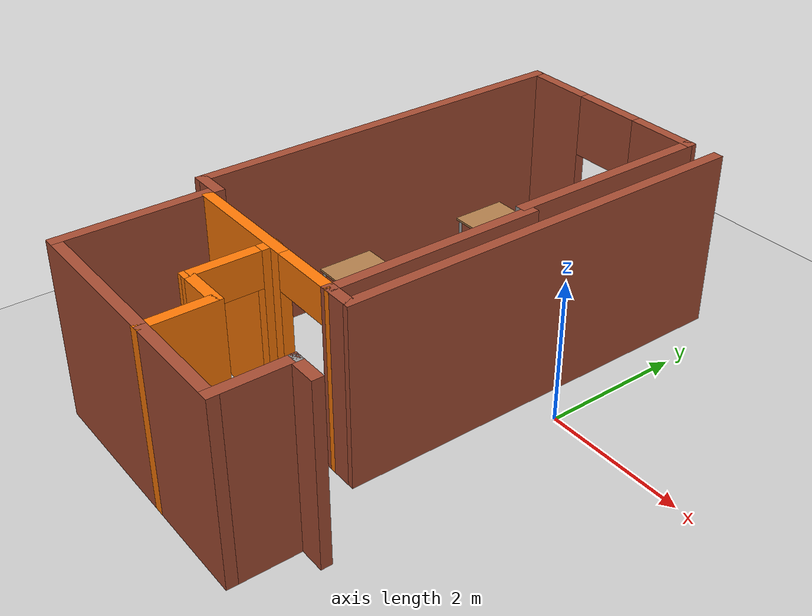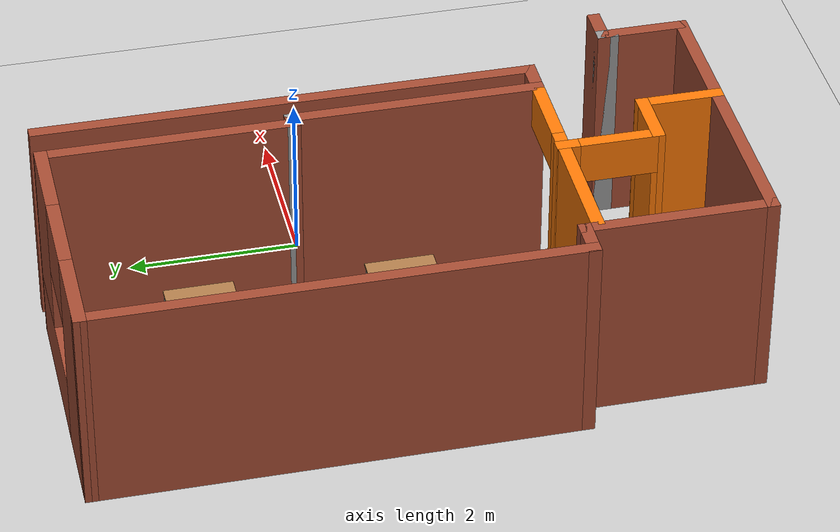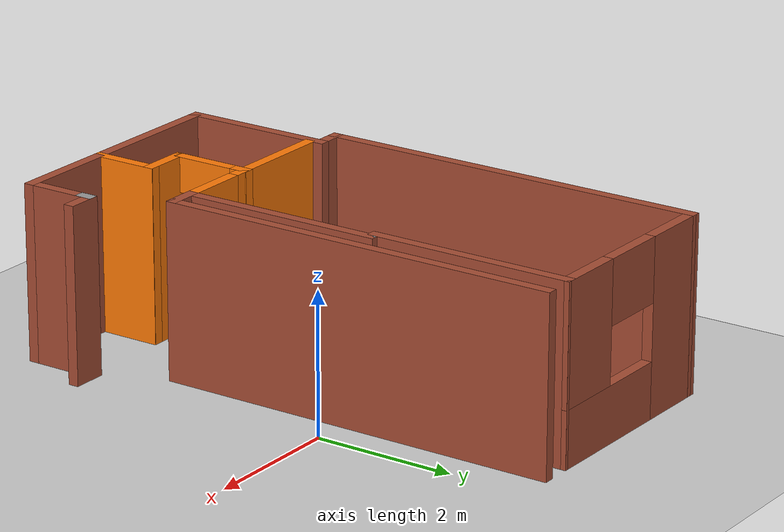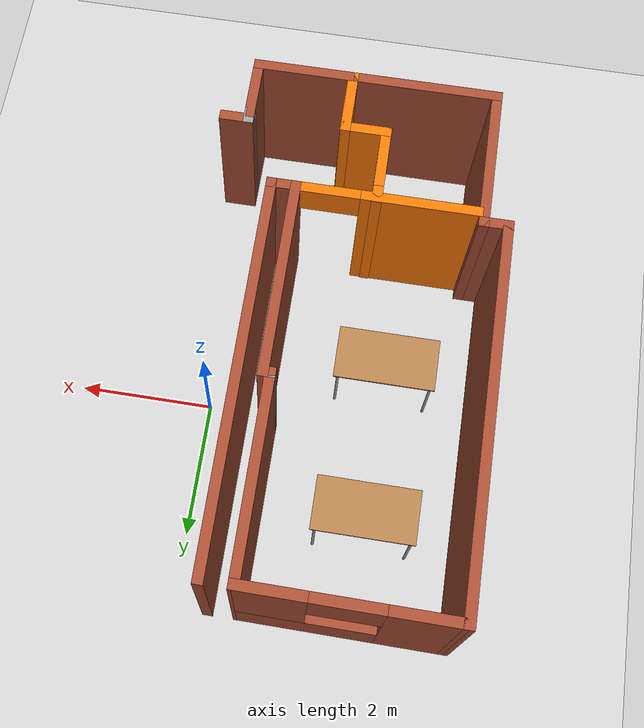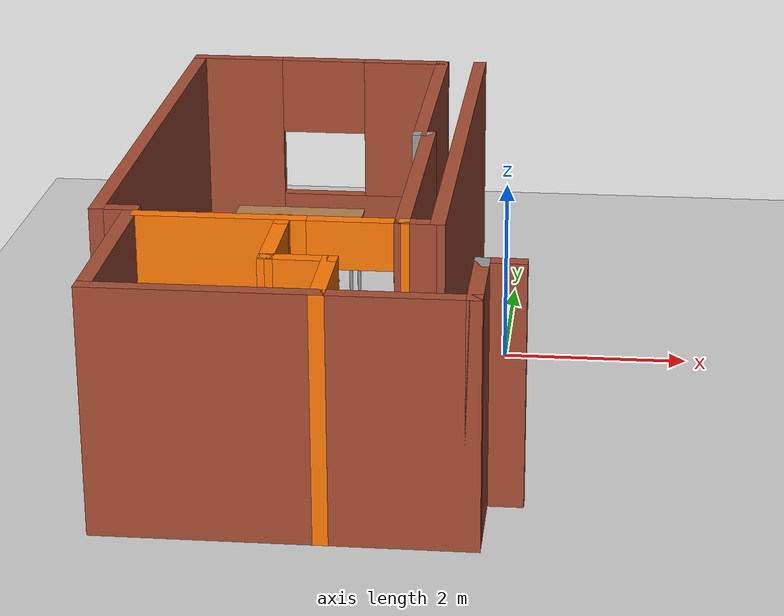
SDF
<sdf version="1.6">
 <world name="default">
  <model name="ground_plane">
   <static>1</static>
   <link name="link">
    <collision name="collision">
     <geometry><plane><normal>0 0 1</normal><size>100 100</size></plane></geometry>
     <surface><friction><ode><mu>100</mu><mu2>50</mu2></ode></friction></surface>
    </collision>
    <visual name="visual">
     <cast_shadows>0</cast_shadows>
     <geometry><plane><normal>0 0 1</normal><size>100 100</size></plane></geometry>
     <material>
      <script><uri>file://media/materials/scripts/gazebo.material</uri><name>Gazebo/Grey</name></script>
     </material>
    </visual>
   </link>
  </model>
  <model name="table_4">
   <static>1</static>
   <link name="link">
    <collision name="surface">
     <pose>0 0 1 0 -0 0</pose>
     <geometry><box><size>1.5 0.8 0.03</size></box></geometry>
     <surface><friction><ode><mu>0.6</mu><mu2>0.6</mu2></ode></friction></surface>
    </collision>
    <visual name="visual1">
     <pose>0 0 1 0 -0 0</pose>
     <geometry><box><size>1.5 0.8 0.03</size></box></geometry>
     <material>
      <script><uri>file://media/materials/scripts/gazebo.material</uri><name>Gazebo/Wood</name></script>
     </material>
    </visual>
    <collision name="front_left_leg">
     <pose>0.68 0.38 0.5 0 -0 0</pose>
     <geometry><cylinder><radius>0.02</radius><length>1</length></cylinder></geometry>
    </collision>
    <visual name="front_left_leg">
     <pose>0.68 0.38 0.5 0 -0 0</pose>
     <geometry><cylinder><radius>0.02</radius><length>1</length></cylinder></geometry>
     <material>
      <script><uri>file://media/materials/scripts/gazebo.material</uri><name>Gazebo/Grey</name></script>
     </material>
    </visual>
    <collision name="front_right_leg">
     <pose>0.68 -0.38 0.5 0 -0 0</pose>
     <geometry><cylinder><radius>0.02</radius><length>1</length></cylinder></geometry>
    </collision>
    <visual name="front_right_leg">
     <pose>0.68 -0.38 0.5 0 -0 0</pose>
     <geometry><cylinder><radius>0.02</radius><length>1</length></cylinder></geometry>
     <material>
      <script><uri>file://media/materials/scripts/gazebo.material</uri><name>Gazebo/Grey</name></script>
     </material>
    </visual>
    <collision name="back_right_leg">
     <pose>-0.68 -0.38 0.5 0 -0 0</pose>
     <geometry><cylinder><radius>0.02</radius><length>1</length></cylinder></geometry>
    </collision>
    <visual name="back_right_leg">
     <pose>-0.68 -0.38 0.5 0 -0 0</pose>
     <geometry><cylinder><radius>0.02</radius><length>1</length></cylinder></geometry>
     <material>
      <script><uri>file://media/materials/scripts/gazebo.material</uri><name>Gazebo/Grey</name></script>
     </material>
    </visual>
    <collision name="back_left_leg">
     <pose>-0.68 0.38 0.5 0 -0 0</pose>
     <geometry><cylinder><radius>0.02</radius><length>1</length></cylinder></geometry>
    </collision>
    <visual name="back_left_leg">
     <pose>-0.68 0.38 0.5 0 -0 0</pose>
     <geometry><cylinder><radius>0.02</radius><length>1</length></cylinder></geometry>
     <material>
      <script><uri>file://media/materials/scripts/gazebo.material</uri><name>Gazebo/Grey</name></script>
     </material>
    </visual>
   </link>
   <pose>-2.54391 -0.8404 0 0 -0 0</pose>
  </model>
  <model name="Home">
   <link name="Wall_0">
    <pose>-2.72478 3.89978 0 0 0 -0.005767</pose>
    <visual name="Wall_0_Visual_0">
     <pose>-1.0078 0 1.25 0 -0 0</pose>
     <geometry><box><size>1.08245 0.15 2.5</size></box></geometry>
     <material>
      <script><uri>file://media/materials/scripts/gazebo.material</uri><name>Gazebo/Bricks</name></script>
      <ambient>1 1 1 1</ambient>
     </material>
     <meta><layer>0</layer></meta>
    </visual>
    <visual name="Wall_0_Visual_1">
     <pose>0.541227 0 0.4 0 -0 0</pose>
     <geometry><box><size>2.01559 0.15 0.8</size></box></geometry>
     <material>
      <script><uri>file://media/materials/scripts/gazebo.material</uri><name>Gazebo/Bricks</name></script>
      <ambient>1 1 1 1</ambient>
     </material>
     <meta><layer>0</layer></meta>
    </visual>
    <visual name="Wall_0_Visual_2">
     <pose>1.04123 0 1.65 0 -0 0</pose>
     <geometry><box><size>1.0156 0.15 1.7</size></box></geometry>
     <material>
      <script><uri>file://media/materials/scripts/gazebo.material</uri><name>Gazebo/Bricks</name></script>
      <ambient>1 1 1 1</ambient>
     </material>
     <meta><layer>0</layer></meta>
    </visual>
    <visual name="Wall_0_Visual_3">
     <pose>0.033429 0 2.05 0 -0 0</pose>
     <geometry><box><size>1 0.15 0.9</size></box></geometry>
     <material>
      <script><uri>file://media/materials/scripts/gazebo.material</uri><name>Gazebo/Bricks</name></script>
      <ambient>1 1 1 1</ambient>
     </material>
     <meta><layer>0</layer></meta>
    </visual>
    <collision name="Wall_0_Collision_0">
     <pose>-1.0078 0 1.25 0 -0 0</pose>
     <geometry><box><size>1.08245 0.15 2.5</size></box></geometry>
     <surface>
      <friction>
       <ode><mu>1</mu><mu2>1</mu2><fdir1>0 0 0</fdir1><slip1>0</slip1><slip2>0</slip2></ode>
       <torsional>
        <coefficient>1</coefficient>
        <patch_radius>0</patch_radius>
        <surface_radius>0</surface_radius>
        <use_patch_radius>1</use_patch_radius>
        <ode><slip>0</slip></ode>
       </torsional>
      </friction>
      <bounce><restitution_coefficient>0</restitution_coefficient><threshold>1e+06</threshold></bounce>
      <contact>
       <collide_without_contact>0</collide_without_contact>
       <collide_without_contact_bitmask>1</collide_without_contact_bitmask>
       <collide_bitmask>1</collide_bitmask>
       <ode>
        <soft_cfm>0</soft_cfm>
        <soft_erp>0.2</soft_erp>
        <kp>1e+13</kp>
        <kd>1</kd>
        <max_vel>0.01</max_vel>
        <min_depth>0</min_depth>
       </ode>
       <bullet>
        <split_impulse>1</split_impulse>
        <split_impulse_penetration_threshold>-0.01</split_impulse_penetration_threshold>
        <soft_cfm>0</soft_cfm>
        <soft_erp>0.2</soft_erp>
        <kp>1e+13</kp>
        <kd>1</kd>
       </bullet>
      </contact>
     </surface>
    </collision>
    <collision name="Wall_0_Collision_1">
     <pose>0.541227 0 0.4 0 -0 0</pose>
     <geometry><box><size>2.01559 0.15 0.8</size></box></geometry>
     <surface>
      <friction>
       <ode><mu>1</mu><mu2>1</mu2><fdir1>0 0 0</fdir1><slip1>0</slip1><slip2>0</slip2></ode>
       <torsional>
        <coefficient>1</coefficient>
        <patch_radius>0</patch_radius>
        <surface_radius>0</surface_radius>
        <use_patch_radius>1</use_patch_radius>
        <ode><slip>0</slip></ode>
       </torsional>
      </friction>
      <bounce><restitution_coefficient>0</restitution_coefficient><threshold>1e+06</threshold></bounce>
      <contact>
       <collide_without_contact>0</collide_without_contact>
       <collide_without_contact_bitmask>1</collide_without_contact_bitmask>
       <collide_bitmask>1</collide_bitmask>
       <ode>
        <soft_cfm>0</soft_cfm>
        <soft_erp>0.2</soft_erp>
        <kp>1e+13</kp>
        <kd>1</kd>
        <max_vel>0.01</max_vel>
        <min_depth>0</min_depth>
       </ode>
       <bullet>
        <split_impulse>1</split_impulse>
        <split_impulse_penetration_threshold>-0.01</split_impulse_penetration_threshold>
        <soft_cfm>0</soft_cfm>
        <soft_erp>0.2</soft_erp>
        <kp>1e+13</kp>
        <kd>1</kd>
       </bullet>
      </contact>
     </surface>
    </collision>
    <collision name="Wall_0_Collision_2">
     <pose>1.04123 0 1.65 0 -0 0</pose>
     <geometry><box><size>1.0156 0.15 1.7</size></box></geometry>
     <surface>
      <friction>
       <ode><mu>1</mu><mu2>1</mu2><fdir1>0 0 0</fdir1><slip1>0</slip1><slip2>0</slip2></ode>
       <torsional>
        <coefficient>1</coefficient>
        <patch_radius>0</patch_radius>
        <surface_radius>0</surface_radius>
        <use_patch_radius>1</use_patch_radius>
        <ode><slip>0</slip></ode>
       </torsional>
      </friction>
      <bounce><restitution_coefficient>0</restitution_coefficient><threshold>1e+06</threshold></bounce>
      <contact>
       <collide_without_contact>0</collide_without_contact>
       <collide_without_contact_bitmask>1</collide_without_contact_bitmask>
       <collide_bitmask>1</collide_bitmask>
       <ode>
        <soft_cfm>0</soft_cfm>
        <soft_erp>0.2</soft_erp>
        <kp>1e+13</kp>
        <kd>1</kd>
        <max_vel>0.01</max_vel>
        <min_depth>0</min_depth>
       </ode>
       <bullet>
        <split_impulse>1</split_impulse>
        <split_impulse_penetration_threshold>-0.01</split_impulse_penetration_threshold>
        <soft_cfm>0</soft_cfm>
        <soft_erp>0.2</soft_erp>
        <kp>1e+13</kp>
        <kd>1</kd>
       </bullet>
      </contact>
     </surface>
    </collision>
    <collision name="Wall_0_Collision_3">
     <pose>0.033429 0 2.05 0 -0 0</pose>
     <geometry><box><size>1 0.15 0.9</size></box></geometry>
     <surface>
      <friction>
       <ode><mu>1</mu><mu2>1</mu2><fdir1>0 0 0</fdir1><slip1>0</slip1><slip2>0</slip2></ode>
       <torsional>
        <coefficient>1</coefficient>
        <patch_radius>0</patch_radius>
        <surface_radius>0</surface_radius>
        <use_patch_radius>1</use_patch_radius>
        <ode><slip>0</slip></ode>
       </torsional>
      </friction>
      <bounce><restitution_coefficient>0</restitution_coefficient><threshold>1e+06</threshold></bounce>
      <contact>
       <collide_without_contact>0</collide_without_contact>
       <collide_without_contact_bitmask>1</collide_without_contact_bitmask>
       <collide_bitmask>1</collide_bitmask>
       <ode>
        <soft_cfm>0</soft_cfm>
        <soft_erp>0.2</soft_erp>
        <kp>1e+13</kp>
        <kd>1</kd>
        <max_vel>0.01</max_vel>
        <min_depth>0</min_depth>
       </ode>
       <bullet>
        <split_impulse>1</split_impulse>
        <split_impulse_penetration_threshold>-0.01</split_impulse_penetration_threshold>
        <soft_cfm>0</soft_cfm>
        <soft_erp>0.2</soft_erp>
        <kp>1e+13</kp>
        <kd>1</kd>
       </bullet>
      </contact>
     </surface>
    </collision>
   </link>
   <link name="Wall_1">
    <pose>-1.25102 2.46613 0 0 0 -1.57096</pose>
    <visual name="Wall_1_Visual">
     <pose>0 0 1.25 0 -0 0</pose>
     <geometry><box><size>3 0.15 2.5</size></box></geometry>
     <material>
      <script><uri>file://media/materials/scripts/gazebo.material</uri><name>Gazebo/Bricks</name></script>
      <ambient>1 1 1 1</ambient>
     </material>
     <meta><layer>0</layer></meta>
    </visual>
    <collision name="Wall_1_Collision">
     <pose>0 0 1.25 0 -0 0</pose>
     <geometry><box><size>3 0.15 2.5</size></box></geometry>
     <surface>
      <friction>
       <ode><mu>1</mu><mu2>1</mu2><fdir1>0 0 0</fdir1><slip1>0</slip1><slip2>0</slip2></ode>
       <torsional>
        <coefficient>1</coefficient>
        <patch_radius>0</patch_radius>
        <surface_radius>0</surface_radius>
        <use_patch_radius>1</use_patch_radius>
        <ode><slip>0</slip></ode>
       </torsional>
      </friction>
      <bounce><restitution_coefficient>0</restitution_coefficient><threshold>1e+06</threshold></bounce>
      <contact>
       <collide_without_contact>0</collide_without_contact>
       <collide_without_contact_bitmask>1</collide_without_contact_bitmask>
       <collide_bitmask>1</collide_bitmask>
       <ode>
        <soft_cfm>0</soft_cfm>
        <soft_erp>0.2</soft_erp>
        <kp>1e+13</kp>
        <kd>1</kd>
        <max_vel>0.01</max_vel>
        <min_depth>0</min_depth>
       </ode>
       <bullet>
        <split_impulse>1</split_impulse>
        <split_impulse_penetration_threshold>-0.01</split_impulse_penetration_threshold>
        <soft_cfm>0</soft_cfm>
        <soft_erp>0.2</soft_erp>
        <kp>1e+13</kp>
        <kd>1</kd>
       </bullet>
      </contact>
     </surface>
    </collision>
   </link>
   <link name="Wall_2">
    <pose>-1.20125 1.04097 0 0 -0 0</pose>
    <visual name="Wall_2_Visual">
     <pose>0 0 1.25 0 -0 0</pose>
     <geometry><box><size>0.25 0.15 2.5</size></box></geometry>
     <material>
      <script><uri>file://media/materials/scripts/gazebo.material</uri><name>Gazebo/Grey</name></script>
      <ambient>1 1 1 1</ambient>
     </material>
     <meta><layer>0</layer></meta>
    </visual>
    <collision name="Wall_2_Collision">
     <pose>0 0 1.25 0 -0 0</pose>
     <geometry><box><size>0.25 0.15 2.5</size></box></geometry>
     <surface>
      <friction>
       <ode><mu>1</mu><mu2>1</mu2><fdir1>0 0 0</fdir1><slip1>0</slip1><slip2>0</slip2></ode>
       <torsional>
        <coefficient>1</coefficient>
        <patch_radius>0</patch_radius>
        <surface_radius>0</surface_radius>
        <use_patch_radius>1</use_patch_radius>
        <ode><slip>0</slip></ode>
       </torsional>
      </friction>
      <bounce><restitution_coefficient>0</restitution_coefficient><threshold>1e+06</threshold></bounce>
      <contact>
       <collide_without_contact>0</collide_without_contact>
       <collide_without_contact_bitmask>1</collide_without_contact_bitmask>
       <collide_bitmask>1</collide_bitmask>
       <ode>
        <soft_cfm>0</soft_cfm>
        <soft_erp>0.2</soft_erp>
        <kp>1e+13</kp>
        <kd>1</kd>
        <max_vel>0.01</max_vel>
        <min_depth>0</min_depth>
       </ode>
       <bullet>
        <split_impulse>1</split_impulse>
        <split_impulse_penetration_threshold>-0.01</split_impulse_penetration_threshold>
        <soft_cfm>0</soft_cfm>
        <soft_erp>0.2</soft_erp>
        <kp>1e+13</kp>
        <kd>1</kd>
       </bullet>
      </contact>
     </surface>
    </collision>
   </link>
   <link name="Wall_26">
    <pose>-0.125784 -2.80872 0 0 -0 3.14159</pose>
    <visual name="Wall_26_Visual">
     <pose>0 0 1.25 0 -0 0</pose>
     <geometry><box><size>0.5 0.15 2.5</size></box></geometry>
     <material>
      <script><uri>file://media/materials/scripts/gazebo.material</uri><name>Gazebo/Bricks</name></script>
      <ambient>1 1 1 1</ambient>
     </material>
     <meta><layer>0</layer></meta>
    </visual>
    <collision name="Wall_26_Collision">
     <pose>0 0 1.25 0 -0 0</pose>
     <geometry><box><size>0.5 0.15 2.5</size></box></geometry>
     <surface>
      <friction>
       <ode><mu>1</mu><mu2>1</mu2><fdir1>0 0 0</fdir1><slip1>0</slip1><slip2>0</slip2></ode>
       <torsional>
        <coefficient>1</coefficient>
        <patch_radius>0</patch_radius>
        <surface_radius>0</surface_radius>
        <use_patch_radius>1</use_patch_radius>
        <ode><slip>0</slip></ode>
       </torsional>
      </friction>
      <bounce><restitution_coefficient>0</restitution_coefficient><threshold>1e+06</threshold></bounce>
      <contact>
       <collide_without_contact>0</collide_without_contact>
       <collide_without_contact_bitmask>1</collide_without_contact_bitmask>
       <collide_bitmask>1</collide_bitmask>
       <ode>
        <soft_cfm>0</soft_cfm>
        <soft_erp>0.2</soft_erp>
        <kp>1e+13</kp>
        <kd>1</kd>
        <max_vel>0.01</max_vel>
        <min_depth>0</min_depth>
       </ode>
       <bullet>
        <split_impulse>1</split_impulse>
        <split_impulse_penetration_threshold>-0.01</split_impulse_penetration_threshold>
        <soft_cfm>0</soft_cfm>
        <soft_erp>0.2</soft_erp>
        <kp>1e+13</kp>
        <kd>1</kd>
       </bullet>
      </contact>
     </surface>
    </collision>
   </link>
   <link name="Wall_27">
    <pose>-0.300784 -2.85872 0 0 0 -1.5708</pose>
    <visual name="Wall_27_Visual">
     <pose>0 0 1.25 0 -0 0</pose>
     <geometry><box><size>0.25 0.15 2.5</size></box></geometry>
     <material>
      <script><uri>file://media/materials/scripts/gazebo.material</uri><name>Gazebo/Grey</name></script>
      <ambient>1 1 1 1</ambient>
     </material>
     <meta><layer>0</layer></meta>
    </visual>
    <collision name="Wall_27_Collision">
     <pose>0 0 1.25 0 -0 0</pose>
     <geometry><box><size>0.25 0.15 2.5</size></box></geometry>
     <surface>
      <friction>
       <ode><mu>1</mu><mu2>1</mu2><fdir1>0 0 0</fdir1><slip1>0</slip1><slip2>0</slip2></ode>
       <torsional>
        <coefficient>1</coefficient>
        <patch_radius>0</patch_radius>
        <surface_radius>0</surface_radius>
        <use_patch_radius>1</use_patch_radius>
        <ode><slip>0</slip></ode>
       </torsional>
      </friction>
      <bounce><restitution_coefficient>0</restitution_coefficient><threshold>1e+06</threshold></bounce>
      <contact>
       <collide_without_contact>0</collide_without_contact>
       <collide_without_contact_bitmask>1</collide_without_contact_bitmask>
       <collide_bitmask>1</collide_bitmask>
       <ode>
        <soft_cfm>0</soft_cfm>
        <soft_erp>0.2</soft_erp>
        <kp>1e+13</kp>
        <kd>1</kd>
        <max_vel>0.01</max_vel>
        <min_depth>0</min_depth>
       </ode>
       <bullet>
        <split_impulse>1</split_impulse>
        <split_impulse_penetration_threshold>-0.01</split_impulse_penetration_threshold>
        <soft_cfm>0</soft_cfm>
        <soft_erp>0.2</soft_erp>
        <kp>1e+13</kp>
        <kd>1</kd>
       </bullet>
      </contact>
     </surface>
    </collision>
   </link>
   <link name="Wall_28">
    <pose>-0.300784 -3.33372 0 0 0 -1.5708</pose>
    <visual name="Wall_28_Visual">
     <pose>0 0 1.25 0 -0 0</pose>
     <geometry><box><size>1 0.15 2.5</size></box></geometry>
     <material>
      <script><uri>file://media/materials/scripts/gazebo.material</uri><name>Gazebo/Bricks</name></script>
      <ambient>1 1 1 1</ambient>
     </material>
     <meta><layer>0</layer></meta>
    </visual>
    <collision name="Wall_28_Collision">
     <pose>0 0 1.25 0 -0 0</pose>
     <geometry><box><size>1 0.15 2.5</size></box></geometry>
     <surface>
      <friction>
       <ode><mu>1</mu><mu2>1</mu2><fdir1>0 0 0</fdir1><slip1>0</slip1><slip2>0</slip2></ode>
       <torsional>
        <coefficient>1</coefficient>
        <patch_radius>0</patch_radius>
        <surface_radius>0</surface_radius>
        <use_patch_radius>1</use_patch_radius>
        <ode><slip>0</slip></ode>
       </torsional>
      </friction>
      <bounce><restitution_coefficient>0</restitution_coefficient><threshold>1e+06</threshold></bounce>
      <contact>
       <collide_without_contact>0</collide_without_contact>
       <collide_without_contact_bitmask>1</collide_without_contact_bitmask>
       <collide_bitmask>1</collide_bitmask>
       <ode>
        <soft_cfm>0</soft_cfm>
        <soft_erp>0.2</soft_erp>
        <kp>1e+13</kp>
        <kd>1</kd>
        <max_vel>0.01</max_vel>
        <min_depth>0</min_depth>
       </ode>
       <bullet>
        <split_impulse>1</split_impulse>
        <split_impulse_penetration_threshold>-0.01</split_impulse_penetration_threshold>
        <soft_cfm>0</soft_cfm>
        <soft_erp>0.2</soft_erp>
        <kp>1e+13</kp>
        <kd>1</kd>
       </bullet>
      </contact>
     </surface>
    </collision>
   </link>
   <link name="Wall_29">
    <pose>-0.975784 -3.75872 0 0 -0 3.14159</pose>
    <visual name="Wall_29_Visual">
     <pose>0 0 1.25 0 -0 0</pose>
     <geometry><box><size>1.5 0.15 2.5</size></box></geometry>
     <material>
      <script><uri>file://media/materials/scripts/gazebo.material</uri><name>Gazebo/Bricks</name></script>
      <ambient>1 1 1 1</ambient>
     </material>
     <meta><layer>0</layer></meta>
    </visual>
    <collision name="Wall_29_Collision">
     <pose>0 0 1.25 0 -0 0</pose>
     <geometry><box><size>1.5 0.15 2.5</size></box></geometry>
     <surface>
      <friction>
       <ode><mu>1</mu><mu2>1</mu2><fdir1>0 0 0</fdir1><slip1>0</slip1><slip2>0</slip2></ode>
       <torsional>
        <coefficient>1</coefficient>
        <patch_radius>0</patch_radius>
        <surface_radius>0</surface_radius>
        <use_patch_radius>1</use_patch_radius>
        <ode><slip>0</slip></ode>
       </torsional>
      </friction>
      <bounce><restitution_coefficient>0</restitution_coefficient><threshold>1e+06</threshold></bounce>
      <contact>
       <collide_without_contact>0</collide_without_contact>
       <collide_without_contact_bitmask>1</collide_without_contact_bitmask>
       <collide_bitmask>1</collide_bitmask>
       <ode>
        <soft_cfm>0</soft_cfm>
        <soft_erp>0.2</soft_erp>
        <kp>1e+13</kp>
        <kd>1</kd>
        <max_vel>0.01</max_vel>
        <min_depth>0</min_depth>
       </ode>
       <bullet>
        <split_impulse>1</split_impulse>
        <split_impulse_penetration_threshold>-0.01</split_impulse_penetration_threshold>
        <soft_cfm>0</soft_cfm>
        <soft_erp>0.2</soft_erp>
        <kp>1e+13</kp>
        <kd>1</kd>
       </bullet>
      </contact>
     </surface>
    </collision>
   </link>
   <link name="Wall_3">
    <pose>-1.15125 -0.384029 0 0 0 -1.5708</pose>
    <visual name="Wall_3_Visual">
     <pose>0 0 1.25 0 -0 0</pose>
     <geometry><box><size>3 0.15 2.5</size></box></geometry>
     <material>
      <script><uri>file://media/materials/scripts/gazebo.material</uri><name>Gazebo/Bricks</name></script>
      <ambient>1 1 1 1</ambient>
     </material>
     <meta><layer>0</layer></meta>
    </visual>
    <collision name="Wall_3_Collision">
     <pose>0 0 1.25 0 -0 0</pose>
     <geometry><box><size>3 0.15 2.5</size></box></geometry>
     <surface>
      <friction>
       <ode><mu>1</mu><mu2>1</mu2><fdir1>0 0 0</fdir1><slip1>0</slip1><slip2>0</slip2></ode>
       <torsional>
        <coefficient>1</coefficient>
        <patch_radius>0</patch_radius>
        <surface_radius>0</surface_radius>
        <use_patch_radius>1</use_patch_radius>
        <ode><slip>0</slip></ode>
       </torsional>
      </friction>
      <bounce><restitution_coefficient>0</restitution_coefficient><threshold>1e+06</threshold></bounce>
      <contact>
       <collide_without_contact>0</collide_without_contact>
       <collide_without_contact_bitmask>1</collide_without_contact_bitmask>
       <collide_bitmask>1</collide_bitmask>
       <ode>
        <soft_cfm>0</soft_cfm>
        <soft_erp>0.2</soft_erp>
        <kp>1e+13</kp>
        <kd>1</kd>
        <max_vel>0.01</max_vel>
        <min_depth>0</min_depth>
       </ode>
       <bullet>
        <split_impulse>1</split_impulse>
        <split_impulse_penetration_threshold>-0.01</split_impulse_penetration_threshold>
        <soft_cfm>0</soft_cfm>
        <soft_erp>0.2</soft_erp>
        <kp>1e+13</kp>
        <kd>1</kd>
       </bullet>
      </contact>
     </surface>
    </collision>
   </link>
   <link name="Wall_33">
    <pose>-2.78428 -3.75872 0 0 0 -3.14159</pose>
    <visual name="Wall_33_Visual">
     <pose>0 0 1.25 0 -0 0</pose>
     <geometry><box><size>2.283 0.15 2.5</size></box></geometry>
     <material>
      <script><uri>file://media/materials/scripts/gazebo.material</uri><name>Gazebo/Bricks</name></script>
      <ambient>1 1 1 1</ambient>
     </material>
     <meta><layer>0</layer></meta>
    </visual>
    <collision name="Wall_33_Collision">
     <pose>0 0 1.25 0 -0 0</pose>
     <geometry><box><size>2.283 0.15 2.5</size></box></geometry>
     <surface>
      <friction>
       <ode><mu>1</mu><mu2>1</mu2><fdir1>0 0 0</fdir1><slip1>0</slip1><slip2>0</slip2></ode>
       <torsional>
        <coefficient>1</coefficient>
        <patch_radius>0</patch_radius>
        <surface_radius>0</surface_radius>
        <use_patch_radius>1</use_patch_radius>
        <ode><slip>0</slip></ode>
       </torsional>
      </friction>
      <bounce><restitution_coefficient>0</restitution_coefficient><threshold>1e+06</threshold></bounce>
      <contact>
       <collide_without_contact>0</collide_without_contact>
       <collide_without_contact_bitmask>1</collide_without_contact_bitmask>
       <collide_bitmask>1</collide_bitmask>
       <ode>
        <soft_cfm>0</soft_cfm>
        <soft_erp>0.2</soft_erp>
        <kp>1e+13</kp>
        <kd>1</kd>
        <max_vel>0.01</max_vel>
        <min_depth>0</min_depth>
       </ode>
       <bullet>
        <split_impulse>1</split_impulse>
        <split_impulse_penetration_threshold>-0.01</split_impulse_penetration_threshold>
        <soft_cfm>0</soft_cfm>
        <soft_erp>0.2</soft_erp>
        <kp>1e+13</kp>
        <kd>1</kd>
       </bullet>
      </contact>
     </surface>
    </collision>
   </link>
   <link name="Wall_34">
    <pose>-3.85078 -2.70872 0 0 -0 1.5708</pose>
    <visual name="Wall_34_Visual">
     <pose>0 0 1.25 0 -0 0</pose>
     <geometry><box><size>2.25 0.15 2.5</size></box></geometry>
     <material>
      <script><uri>file://media/materials/scripts/gazebo.material</uri><name>Gazebo/Bricks</name></script>
      <ambient>1 1 1 1</ambient>
     </material>
     <meta><layer>0</layer></meta>
    </visual>
    <collision name="Wall_34_Collision">
     <pose>0 0 1.25 0 -0 0</pose>
     <geometry><box><size>2.25 0.15 2.5</size></box></geometry>
     <surface>
      <friction>
       <ode><mu>1</mu><mu2>1</mu2><fdir1>0 0 0</fdir1><slip1>0</slip1><slip2>0</slip2></ode>
       <torsional>
        <coefficient>1</coefficient>
        <patch_radius>0</patch_radius>
        <surface_radius>0</surface_radius>
        <use_patch_radius>1</use_patch_radius>
        <ode><slip>0</slip></ode>
       </torsional>
      </friction>
      <bounce><restitution_coefficient>0</restitution_coefficient><threshold>1e+06</threshold></bounce>
      <contact>
       <collide_without_contact>0</collide_without_contact>
       <collide_without_contact_bitmask>1</collide_without_contact_bitmask>
       <collide_bitmask>1</collide_bitmask>
       <ode>
        <soft_cfm>0</soft_cfm>
        <soft_erp>0.2</soft_erp>
        <kp>1e+13</kp>
        <kd>1</kd>
        <max_vel>0.01</max_vel>
        <min_depth>0</min_depth>
       </ode>
       <bullet>
        <split_impulse>1</split_impulse>
        <split_impulse_penetration_threshold>-0.01</split_impulse_penetration_threshold>
        <soft_cfm>0</soft_cfm>
        <soft_erp>0.2</soft_erp>
        <kp>1e+13</kp>
        <kd>1</kd>
       </bullet>
      </contact>
     </surface>
    </collision>
   </link>
   <link name="Wall_35">
    <pose>-4.02478 -1.65872 0 0 -0 3.14159</pose>
    <visual name="Wall_35_Visual">
     <pose>0 0 1.25 0 -0 0</pose>
     <geometry><box><size>0.498 0.15 2.5</size></box></geometry>
     <material>
      <script><uri>file://media/materials/scripts/gazebo.material</uri><name>Gazebo/Bricks</name></script>
      <ambient>1 1 1 1</ambient>
     </material>
     <meta><layer>0</layer></meta>
    </visual>
    <collision name="Wall_35_Collision">
     <pose>0 0 1.25 0 -0 0</pose>
     <geometry><box><size>0.498 0.15 2.5</size></box></geometry>
     <surface>
      <friction>
       <ode><mu>1</mu><mu2>1</mu2><fdir1>0 0 0</fdir1><slip1>0</slip1><slip2>0</slip2></ode>
       <torsional>
        <coefficient>1</coefficient>
        <patch_radius>0</patch_radius>
        <surface_radius>0</surface_radius>
        <use_patch_radius>1</use_patch_radius>
        <ode><slip>0</slip></ode>
       </torsional>
      </friction>
      <bounce><restitution_coefficient>0</restitution_coefficient><threshold>1e+06</threshold></bounce>
      <contact>
       <collide_without_contact>0</collide_without_contact>
       <collide_without_contact_bitmask>1</collide_without_contact_bitmask>
       <collide_bitmask>1</collide_bitmask>
       <ode>
        <soft_cfm>0</soft_cfm>
        <soft_erp>0.2</soft_erp>
        <kp>1e+13</kp>
        <kd>1</kd>
        <max_vel>0.01</max_vel>
        <min_depth>0</min_depth>
       </ode>
       <bullet>
        <split_impulse>1</split_impulse>
        <split_impulse_penetration_threshold>-0.01</split_impulse_penetration_threshold>
        <soft_cfm>0</soft_cfm>
        <soft_erp>0.2</soft_erp>
        <kp>1e+13</kp>
        <kd>1</kd>
       </bullet>
      </contact>
     </surface>
    </collision>
   </link>
   <link name="Wall_36">
    <pose>-4.19878 1.12478 0 0 -0 1.5708</pose>
    <visual name="Wall_36_Visual">
     <pose>0 0 1.25 0 -0 0</pose>
     <geometry><box><size>5.717 0.15 2.5</size></box></geometry>
     <material>
      <script><uri>file://media/materials/scripts/gazebo.material</uri><name>Gazebo/Bricks</name></script>
      <ambient>1 1 1 1</ambient>
     </material>
     <meta><layer>0</layer></meta>
    </visual>
    <collision name="Wall_36_Collision">
     <pose>0 0 1.25 0 -0 0</pose>
     <geometry><box><size>5.717 0.15 2.5</size></box></geometry>
     <surface>
      <friction>
       <ode><mu>1</mu><mu2>1</mu2><fdir1>0 0 0</fdir1><slip1>0</slip1><slip2>0</slip2></ode>
       <torsional>
        <coefficient>1</coefficient>
        <patch_radius>0</patch_radius>
        <surface_radius>0</surface_radius>
        <use_patch_radius>1</use_patch_radius>
        <ode><slip>0</slip></ode>
       </torsional>
      </friction>
      <bounce><restitution_coefficient>0</restitution_coefficient><threshold>1e+06</threshold></bounce>
      <contact>
       <collide_without_contact>0</collide_without_contact>
       <collide_without_contact_bitmask>1</collide_without_contact_bitmask>
       <collide_bitmask>1</collide_bitmask>
       <ode>
        <soft_cfm>0</soft_cfm>
        <soft_erp>0.2</soft_erp>
        <kp>1e+13</kp>
        <kd>1</kd>
        <max_vel>0.01</max_vel>
        <min_depth>0</min_depth>
       </ode>
       <bullet>
        <split_impulse>1</split_impulse>
        <split_impulse_penetration_threshold>-0.01</split_impulse_penetration_threshold>
        <soft_cfm>0</soft_cfm>
        <soft_erp>0.2</soft_erp>
        <kp>1e+13</kp>
        <kd>1</kd>
       </bullet>
      </contact>
     </surface>
    </collision>
   </link>
   <link name="Wall_38">
    <pose>-2.45125 -1.80903 0 0 -0 3.14159</pose>
    <visual name="Wall_38_Visual_0">
     <pose>-1.32022 0 1.25 0 -0 0</pose>
     <geometry><box><size>0.109565 0.15 2.5</size></box></geometry>
     <material>
      <script><uri>file://media/materials/scripts/gazebo.material</uri><name>Gazebo/Grey</name></script>
      <ambient>0.996078 0.47451 0.0196078 1</ambient>
     </material>
     <meta><layer>0</layer></meta>
    </visual>
    <visual name="Wall_38_Visual_1">
     <pose>0.504782 0 1.25 0 -0 0</pose>
     <geometry><box><size>1.74043 0.15 2.5</size></box></geometry>
     <material>
      <script><uri>file://media/materials/scripts/gazebo.material</uri><name>Gazebo/Grey</name></script>
      <ambient>0.996078 0.47451 0.0196078 1</ambient>
     </material>
     <meta><layer>0</layer></meta>
    </visual>
    <visual name="Wall_38_Visual_2">
     <pose>-0.815435 0 2.25 0 -0 0</pose>
     <geometry><box><size>0.9 0.15 0.5</size></box></geometry>
     <material>
      <script><uri>file://media/materials/scripts/gazebo.material</uri><name>Gazebo/Grey</name></script>
      <ambient>0.996078 0.47451 0.0196078 1</ambient>
     </material>
     <meta><layer>0</layer></meta>
    </visual>
    <collision name="Wall_38_Collision_0">
     <pose>-1.32022 0 1.25 0 -0 0</pose>
     <geometry><box><size>0.109565 0.15 2.5</size></box></geometry>
     <surface>
      <friction>
       <ode><mu>1</mu><mu2>1</mu2><fdir1>0 0 0</fdir1><slip1>0</slip1><slip2>0</slip2></ode>
       <torsional>
        <coefficient>1</coefficient>
        <patch_radius>0</patch_radius>
        <surface_radius>0</surface_radius>
        <use_patch_radius>1</use_patch_radius>
        <ode><slip>0</slip></ode>
       </torsional>
      </friction>
      <bounce><restitution_coefficient>0</restitution_coefficient><threshold>1e+06</threshold></bounce>
      <contact>
       <collide_without_contact>0</collide_without_contact>
       <collide_without_contact_bitmask>1</collide_without_contact_bitmask>
       <collide_bitmask>1</collide_bitmask>
       <ode>
        <soft_cfm>0</soft_cfm>
        <soft_erp>0.2</soft_erp>
        <kp>1e+13</kp>
        <kd>1</kd>
        <max_vel>0.01</max_vel>
        <min_depth>0</min_depth>
       </ode>
       <bullet>
        <split_impulse>1</split_impulse>
        <split_impulse_penetration_threshold>-0.01</split_impulse_penetration_threshold>
        <soft_cfm>0</soft_cfm>
        <soft_erp>0.2</soft_erp>
        <kp>1e+13</kp>
        <kd>1</kd>
       </bullet>
      </contact>
     </surface>
    </collision>
    <collision name="Wall_38_Collision_1">
     <pose>0.504782 0 1.25 0 -0 0</pose>
     <geometry><box><size>1.74043 0.15 2.5</size></box></geometry>
     <surface>
      <friction>
       <ode><mu>1</mu><mu2>1</mu2><fdir1>0 0 0</fdir1><slip1>0</slip1><slip2>0</slip2></ode>
       <torsional>
        <coefficient>1</coefficient>
        <patch_radius>0</patch_radius>
        <surface_radius>0</surface_radius>
        <use_patch_radius>1</use_patch_radius>
        <ode><slip>0</slip></ode>
       </torsional>
      </friction>
      <bounce><restitution_coefficient>0</restitution_coefficient><threshold>1e+06</threshold></bounce>
      <contact>
       <collide_without_contact>0</collide_without_contact>
       <collide_without_contact_bitmask>1</collide_without_contact_bitmask>
       <collide_bitmask>1</collide_bitmask>
       <ode>
        <soft_cfm>0</soft_cfm>
        <soft_erp>0.2</soft_erp>
        <kp>1e+13</kp>
        <kd>1</kd>
        <max_vel>0.01</max_vel>
        <min_depth>0</min_depth>
       </ode>
       <bullet>
        <split_impulse>1</split_impulse>
        <split_impulse_penetration_threshold>-0.01</split_impulse_penetration_threshold>
        <soft_cfm>0</soft_cfm>
        <soft_erp>0.2</soft_erp>
        <kp>1e+13</kp>
        <kd>1</kd>
       </bullet>
      </contact>
     </surface>
    </collision>
    <collision name="Wall_38_Collision_2">
     <pose>-0.815435 0 2.25 0 -0 0</pose>
     <geometry><box><size>0.9 0.15 0.5</size></box></geometry>
     <surface>
      <friction>
       <ode><mu>1</mu><mu2>1</mu2><fdir1>0 0 0</fdir1><slip1>0</slip1><slip2>0</slip2></ode>
       <torsional>
        <coefficient>1</coefficient>
        <patch_radius>0</patch_radius>
        <surface_radius>0</surface_radius>
        <use_patch_radius>1</use_patch_radius>
        <ode><slip>0</slip></ode>
       </torsional>
      </friction>
      <bounce><restitution_coefficient>0</restitution_coefficient><threshold>1e+06</threshold></bounce>
      <contact>
       <collide_without_contact>0</collide_without_contact>
       <collide_without_contact_bitmask>1</collide_without_contact_bitmask>
       <collide_bitmask>1</collide_bitmask>
       <ode>
        <soft_cfm>0</soft_cfm>
        <soft_erp>0.2</soft_erp>
        <kp>1e+13</kp>
        <kd>1</kd>
        <max_vel>0.01</max_vel>
        <min_depth>0</min_depth>
       </ode>
       <bullet>
        <split_impulse>1</split_impulse>
        <split_impulse_penetration_threshold>-0.01</split_impulse_penetration_threshold>
        <soft_cfm>0</soft_cfm>
        <soft_erp>0.2</soft_erp>
        <kp>1e+13</kp>
        <kd>1</kd>
       </bullet>
      </contact>
     </surface>
    </collision>
   </link>
   <link name="Wall_4">
    <pose>-0.976019 -1.80887 0 0 -0 0.000893</pose>
    <visual name="Wall_4_Visual">
     <pose>0 0 1.25 0 -0 0</pose>
     <geometry><box><size>0.5 0.15 2.5</size></box></geometry>
     <material>
      <script><uri>file://media/materials/scripts/gazebo.material</uri><name>Gazebo/Bricks</name></script>
      <ambient>1 1 1 1</ambient>
     </material>
     <meta><layer>0</layer></meta>
    </visual>
    <collision name="Wall_4_Collision">
     <pose>0 0 1.25 0 -0 0</pose>
     <geometry><box><size>0.5 0.15 2.5</size></box></geometry>
     <surface>
      <friction>
       <ode><mu>1</mu><mu2>1</mu2><fdir1>0 0 0</fdir1><slip1>0</slip1><slip2>0</slip2></ode>
       <torsional>
        <coefficient>1</coefficient>
        <patch_radius>0</patch_radius>
        <surface_radius>0</surface_radius>
        <use_patch_radius>1</use_patch_radius>
        <ode><slip>0</slip></ode>
       </torsional>
      </friction>
      <bounce><restitution_coefficient>0</restitution_coefficient><threshold>1e+06</threshold></bounce>
      <contact>
       <collide_without_contact>0</collide_without_contact>
       <collide_without_contact_bitmask>1</collide_without_contact_bitmask>
       <collide_bitmask>1</collide_bitmask>
       <ode>
        <soft_cfm>0</soft_cfm>
        <soft_erp>0.2</soft_erp>
        <kp>1e+13</kp>
        <kd>1</kd>
        <max_vel>0.01</max_vel>
        <min_depth>0</min_depth>
       </ode>
       <bullet>
        <split_impulse>1</split_impulse>
        <split_impulse_penetration_threshold>-0.01</split_impulse_penetration_threshold>
        <soft_cfm>0</soft_cfm>
        <soft_erp>0.2</soft_erp>
        <kp>1e+13</kp>
        <kd>1</kd>
       </bullet>
      </contact>
     </surface>
    </collision>
   </link>
   <link name="Wall_44">
    <pose>-2.31793 -2.34721 0 0 0 -1.5708</pose>
    <visual name="Wall_44_Visual_0">
     <pose>-0.488934 0 1.25 0 -0 0</pose>
     <geometry><box><size>0.272132 0.15 2.5</size></box></geometry>
     <material>
      <script><uri>file://media/materials/scripts/gazebo.material</uri><name>Gazebo/Grey</name></script>
      <ambient>0.996078 0.47451 0.0196078 1</ambient>
     </material>
     <meta><layer>0</layer></meta>
    </visual>
    <visual name="Wall_44_Visual_1">
     <pose>0.586066 0 1.25 0 -0 0</pose>
     <geometry><box><size>0.077868 0.15 2.5</size></box></geometry>
     <material>
      <script><uri>file://media/materials/scripts/gazebo.material</uri><name>Gazebo/Grey</name></script>
      <ambient>0.996078 0.47451 0.0196078 1</ambient>
     </material>
     <meta><layer>0</layer></meta>
    </visual>
    <visual name="Wall_44_Visual_2">
     <pose>0.097132 0 2.25 0 -0 0</pose>
     <geometry><box><size>0.9 0.15 0.5</size></box></geometry>
     <material>
      <script><uri>file://media/materials/scripts/gazebo.material</uri><name>Gazebo/Grey</name></script>
      <ambient>0.996078 0.47451 0.0196078 1</ambient>
     </material>
     <meta><layer>0</layer></meta>
    </visual>
    <collision name="Wall_44_Collision_0">
     <pose>-0.488934 0 1.25 0 -0 0</pose>
     <geometry><box><size>0.272132 0.15 2.5</size></box></geometry>
     <surface>
      <friction>
       <ode><mu>1</mu><mu2>1</mu2><fdir1>0 0 0</fdir1><slip1>0</slip1><slip2>0</slip2></ode>
       <torsional>
        <coefficient>1</coefficient>
        <patch_radius>0</patch_radius>
        <surface_radius>0</surface_radius>
        <use_patch_radius>1</use_patch_radius>
        <ode><slip>0</slip></ode>
       </torsional>
      </friction>
      <bounce><restitution_coefficient>0</restitution_coefficient><threshold>1e+06</threshold></bounce>
      <contact>
       <collide_without_contact>0</collide_without_contact>
       <collide_without_contact_bitmask>1</collide_without_contact_bitmask>
       <collide_bitmask>1</collide_bitmask>
       <ode>
        <soft_cfm>0</soft_cfm>
        <soft_erp>0.2</soft_erp>
        <kp>1e+13</kp>
        <kd>1</kd>
        <max_vel>0.01</max_vel>
        <min_depth>0</min_depth>
       </ode>
       <bullet>
        <split_impulse>1</split_impulse>
        <split_impulse_penetration_threshold>-0.01</split_impulse_penetration_threshold>
        <soft_cfm>0</soft_cfm>
        <soft_erp>0.2</soft_erp>
        <kp>1e+13</kp>
        <kd>1</kd>
       </bullet>
      </contact>
     </surface>
    </collision>
    <collision name="Wall_44_Collision_1">
     <pose>0.586066 0 1.25 0 -0 0</pose>
     <geometry><box><size>0.077868 0.15 2.5</size></box></geometry>
     <surface>
      <friction>
       <ode><mu>1</mu><mu2>1</mu2><fdir1>0 0 0</fdir1><slip1>0</slip1><slip2>0</slip2></ode>
       <torsional>
        <coefficient>1</coefficient>
        <patch_radius>0</patch_radius>
        <surface_radius>0</surface_radius>
        <use_patch_radius>1</use_patch_radius>
        <ode><slip>0</slip></ode>
       </torsional>
      </friction>
      <bounce><restitution_coefficient>0</restitution_coefficient><threshold>1e+06</threshold></bounce>
      <contact>
       <collide_without_contact>0</collide_without_contact>
       <collide_without_contact_bitmask>1</collide_without_contact_bitmask>
       <collide_bitmask>1</collide_bitmask>
       <ode>
        <soft_cfm>0</soft_cfm>
        <soft_erp>0.2</soft_erp>
        <kp>1e+13</kp>
        <kd>1</kd>
        <max_vel>0.01</max_vel>
        <min_depth>0</min_depth>
       </ode>
       <bullet>
        <split_impulse>1</split_impulse>
        <split_impulse_penetration_threshold>-0.01</split_impulse_penetration_threshold>
        <soft_cfm>0</soft_cfm>
        <soft_erp>0.2</soft_erp>
        <kp>1e+13</kp>
        <kd>1</kd>
       </bullet>
      </contact>
     </surface>
    </collision>
    <collision name="Wall_44_Collision_2">
     <pose>0.097132 0 2.25 0 -0 0</pose>
     <geometry><box><size>0.9 0.15 0.5</size></box></geometry>
     <surface>
      <friction>
       <ode><mu>1</mu><mu2>1</mu2><fdir1>0 0 0</fdir1><slip1>0</slip1><slip2>0</slip2></ode>
       <torsional>
        <coefficient>1</coefficient>
        <patch_radius>0</patch_radius>
        <surface_radius>0</surface_radius>
        <use_patch_radius>1</use_patch_radius>
        <ode><slip>0</slip></ode>
       </torsional>
      </friction>
      <bounce><restitution_coefficient>0</restitution_coefficient><threshold>1e+06</threshold></bounce>
      <contact>
       <collide_without_contact>0</collide_without_contact>
       <collide_without_contact_bitmask>1</collide_without_contact_bitmask>
       <collide_bitmask>1</collide_bitmask>
       <ode>
        <soft_cfm>0</soft_cfm>
        <soft_erp>0.2</soft_erp>
        <kp>1e+13</kp>
        <kd>1</kd>
        <max_vel>0.01</max_vel>
        <min_depth>0</min_depth>
       </ode>
       <bullet>
        <split_impulse>1</split_impulse>
        <split_impulse_penetration_threshold>-0.01</split_impulse_penetration_threshold>
        <soft_cfm>0</soft_cfm>
        <soft_erp>0.2</soft_erp>
        <kp>1e+13</kp>
        <kd>1</kd>
       </bullet>
      </contact>
     </surface>
    </collision>
   </link>
   <link name="Wall_45">
    <pose>-2.01786 -2.89696 0 0 -0 0.000825</pose>
    <visual name="Wall_45_Visual">
     <pose>0 0 1.25 0 -0 0</pose>
     <geometry><box><size>0.75 0.15 2.5</size></box></geometry>
     <material>
      <script><uri>file://media/materials/scripts/gazebo.material</uri><name>Gazebo/Grey</name></script>
      <ambient>0.996078 0.47451 0.0196078 1</ambient>
     </material>
     <meta><layer>0</layer></meta>
    </visual>
    <collision name="Wall_45_Collision">
     <pose>0 0 1.25 0 -0 0</pose>
     <geometry><box><size>0.75 0.15 2.5</size></box></geometry>
     <surface>
      <friction>
       <ode><mu>1</mu><mu2>1</mu2><fdir1>0 0 0</fdir1><slip1>0</slip1><slip2>0</slip2></ode>
       <torsional>
        <coefficient>1</coefficient>
        <patch_radius>0</patch_radius>
        <surface_radius>0</surface_radius>
        <use_patch_radius>1</use_patch_radius>
        <ode><slip>0</slip></ode>
       </torsional>
      </friction>
      <bounce><restitution_coefficient>0</restitution_coefficient><threshold>1e+06</threshold></bounce>
      <contact>
       <collide_without_contact>0</collide_without_contact>
       <collide_without_contact_bitmask>1</collide_without_contact_bitmask>
       <collide_bitmask>1</collide_bitmask>
       <ode>
        <soft_cfm>0</soft_cfm>
        <soft_erp>0.2</soft_erp>
        <kp>1e+13</kp>
        <kd>1</kd>
        <max_vel>0.01</max_vel>
        <min_depth>0</min_depth>
       </ode>
       <bullet>
        <split_impulse>1</split_impulse>
        <split_impulse_penetration_threshold>-0.01</split_impulse_penetration_threshold>
        <soft_cfm>0</soft_cfm>
        <soft_erp>0.2</soft_erp>
        <kp>1e+13</kp>
        <kd>1</kd>
       </bullet>
      </contact>
     </surface>
    </collision>
   </link>
   <link name="Wall_46">
    <pose>-1.71778 -3.32772 0 0 0 -1.5708</pose>
    <visual name="Wall_46_Visual">
     <pose>0 0 1.25 0 -0 0</pose>
     <geometry><box><size>1.01213 0.15 2.5</size></box></geometry>
     <material>
      <script><uri>file://media/materials/scripts/gazebo.material</uri><name>Gazebo/Grey</name></script>
      <ambient>0.996078 0.47451 0.0196078 1</ambient>
     </material>
     <meta><layer>0</layer></meta>
    </visual>
    <collision name="Wall_46_Collision">
     <pose>0 0 1.25 0 -0 0</pose>
     <geometry><box><size>1.01213 0.15 2.5</size></box></geometry>
     <surface>
      <friction>
       <ode><mu>1</mu><mu2>1</mu2><fdir1>0 0 0</fdir1><slip1>0</slip1><slip2>0</slip2></ode>
       <torsional>
        <coefficient>1</coefficient>
        <patch_radius>0</patch_radius>
        <surface_radius>0</surface_radius>
        <use_patch_radius>1</use_patch_radius>
        <ode><slip>0</slip></ode>
       </torsional>
      </friction>
      <bounce><restitution_coefficient>0</restitution_coefficient><threshold>1e+06</threshold></bounce>
      <contact>
       <collide_without_contact>0</collide_without_contact>
       <collide_without_contact_bitmask>1</collide_without_contact_bitmask>
       <collide_bitmask>1</collide_bitmask>
       <ode>
        <soft_cfm>0</soft_cfm>
        <soft_erp>0.2</soft_erp>
        <kp>1e+13</kp>
        <kd>1</kd>
        <max_vel>0.01</max_vel>
        <min_depth>0</min_depth>
       </ode>
       <bullet>
        <split_impulse>1</split_impulse>
        <split_impulse_penetration_threshold>-0.01</split_impulse_penetration_threshold>
        <soft_cfm>0</soft_cfm>
        <soft_erp>0.2</soft_erp>
        <kp>1e+13</kp>
        <kd>1</kd>
       </bullet>
      </contact>
     </surface>
    </collision>
   </link>
   <link name="Wall_5">
    <pose>-0.800784 1.04128 0 0 -0 1.5708</pose>
    <visual name="Wall_5_Visual">
     <pose>0 0 1.25 0 -0 0</pose>
     <geometry><box><size>5.85 0.15 2.5</size></box></geometry>
     <material>
      <script><uri>file://media/materials/scripts/gazebo.material</uri><name>Gazebo/Bricks</name></script>
      <ambient>1 1 1 1</ambient>
     </material>
     <meta><layer>0</layer></meta>
    </visual>
    <collision name="Wall_5_Collision">
     <pose>0 0 1.25 0 -0 0</pose>
     <geometry><box><size>5.85 0.15 2.5</size></box></geometry>
     <surface>
      <friction>
       <ode><mu>1</mu><mu2>1</mu2><fdir1>0 0 0</fdir1><slip1>0</slip1><slip2>0</slip2></ode>
       <torsional>
        <coefficient>1</coefficient>
        <patch_radius>0</patch_radius>
        <surface_radius>0</surface_radius>
        <use_patch_radius>1</use_patch_radius>
        <ode><slip>0</slip></ode>
       </torsional>
      </friction>
      <bounce><restitution_coefficient>0</restitution_coefficient><threshold>1e+06</threshold></bounce>
      <contact>
       <collide_without_contact>0</collide_without_contact>
       <collide_without_contact_bitmask>1</collide_without_contact_bitmask>
       <collide_bitmask>1</collide_bitmask>
       <ode>
        <soft_cfm>0</soft_cfm>
        <soft_erp>0.2</soft_erp>
        <kp>1e+13</kp>
        <kd>1</kd>
        <max_vel>0.01</max_vel>
        <min_depth>0</min_depth>
       </ode>
       <bullet>
        <split_impulse>1</split_impulse>
        <split_impulse_penetration_threshold>-0.01</split_impulse_penetration_threshold>
        <soft_cfm>0</soft_cfm>
        <soft_erp>0.2</soft_erp>
        <kp>1e+13</kp>
        <kd>1</kd>
       </bullet>
      </contact>
     </surface>
    </collision>
   </link>
   <static>1</static>
   <pose>0.277352 -0.848927 0 0 -0 0</pose>
  </model>
  <model name="table_4_clone">
   <static>1</static>
   <link name="link">
    <collision name="surface">
     <pose>0 0 1 0 -0 0</pose>
     <geometry><box><size>1.5 0.8 0.03</size></box></geometry>
     <surface><friction><ode><mu>0.6</mu><mu2>0.6</mu2></ode></friction></surface>
    </collision>
    <visual name="visual1">
     <pose>0 0 1 0 -0 0</pose>
     <geometry><box><size>1.5 0.8 0.03</size></box></geometry>
     <material>
      <script><uri>file://media/materials/scripts/gazebo.material</uri><name>Gazebo/Wood</name></script>
     </material>
    </visual>
    <collision name="front_left_leg">
     <pose>0.68 0.38 0.5 0 -0 0</pose>
     <geometry><cylinder><radius>0.02</radius><length>1</length></cylinder></geometry>
    </collision>
    <visual name="front_left_leg">
     <pose>0.68 0.38 0.5 0 -0 0</pose>
     <geometry><cylinder><radius>0.02</radius><length>1</length></cylinder></geometry>
     <material>
      <script><uri>file://media/materials/scripts/gazebo.material</uri><name>Gazebo/Grey</name></script>
     </material>
    </visual>
    <collision name="front_right_leg">
     <pose>0.68 -0.38 0.5 0 -0 0</pose>
     <geometry><cylinder><radius>0.02</radius><length>1</length></cylinder></geometry>
    </collision>
    <visual name="front_right_leg">
     <pose>0.68 -0.38 0.5 0 -0 0</pose>
     <geometry><cylinder><radius>0.02</radius><length>1</length></cylinder></geometry>
     <material>
      <script><uri>file://media/materials/scripts/gazebo.material</uri><name>Gazebo/Grey</name></script>
     </material>
    </visual>
    <collision name="back_right_leg">
     <pose>-0.68 -0.38 0.5 0 -0 0</pose>
     <geometry><cylinder><radius>0.02</radius><length>1</length></cylinder></geometry>
    </collision>
    <visual name="back_right_leg">
     <pose>-0.68 -0.38 0.5 0 -0 0</pose>
     <geometry><cylinder><radius>0.02</radius><length>1</length></cylinder></geometry>
     <material>
      <script><uri>file://media/materials/scripts/gazebo.material</uri><name>Gazebo/Grey</name></script>
     </material>
    </visual>
    <collision name="back_left_leg">
     <pose>-0.68 0.38 0.5 0 -0 0</pose>
     <geometry><cylinder><radius>0.02</radius><length>1</length></cylinder></geometry>
    </collision>
    <visual name="back_left_leg">
     <pose>-0.68 0.38 0.5 0 -0 0</pose>
     <geometry><cylinder><radius>0.02</radius><length>1</length></cylinder></geometry>
     <material>
      <script><uri>file://media/materials/scripts/gazebo.material</uri><name>Gazebo/Grey</name></script>
     </material>
    </visual>
   </link>
   <pose>-2.53844 1.46828 0 0 -0 0</pose>
  </model>
 </world>
</sdf>
